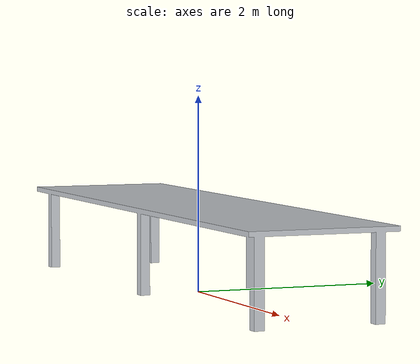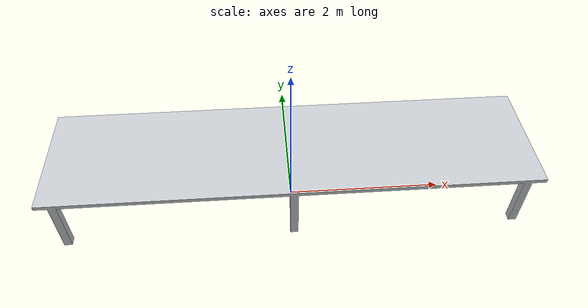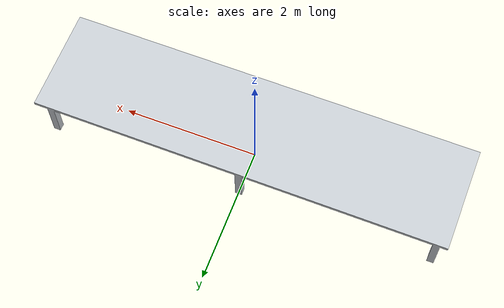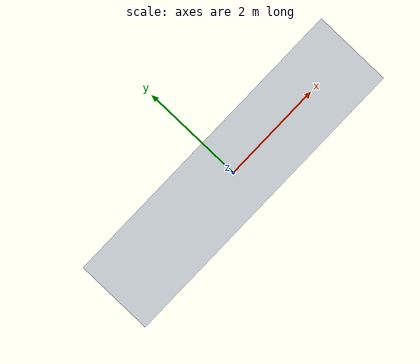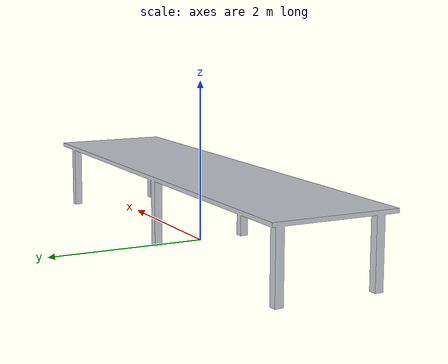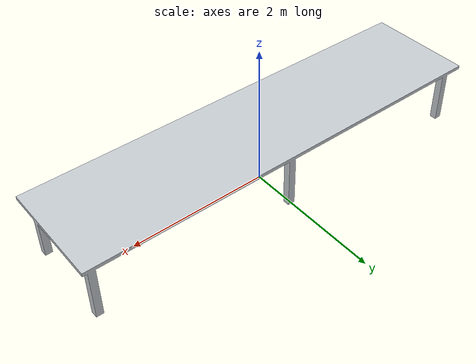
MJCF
<?xml version="1.0" encoding="utf-8"?>
<!-- Generated by scripts/generate_minihannover.py - do not edit by hand. -->
<mujoco model="minihannover_mesh">
  <compiler angle="radian" autolimits="true" meshdir="."/>

  <asset>
    <mesh name="minihannover_mesh" file="minihannover.obj"/>
    <material name="minihannover_top" rgba="0.78 0.8 0.82 1" specular="0.2" shininess="0.3"/>
  </asset>

  <default>
    <default class="minihannover_collision">
      <geom type="box" group="3" contype="1" conaffinity="1"/>
    </default>
  </default>

  <worldbody>
    <body name="minihannover" pos="0 0 0">
      <geom name="minihannover_visual" type="mesh" mesh="minihannover_mesh" material="minihannover_top" contype="0" conaffinity="0" group="0" density="0"/>
      <geom name="minihannover_worktop" class="minihannover_collision" pos="0 0 0.875" size="3 0.75 0.025" density="700"/>
      <geom name="minihannover_leg_x0_y0" class="minihannover_collision" pos="-2.85 -0.6 0.425" size="0.05 0.05 0.425" density="800"/>
      <geom name="minihannover_leg_x0_y1" class="minihannover_collision" pos="-2.85 0.6 0.425" size="0.05 0.05 0.425" density="800"/>
      <geom name="minihannover_leg_x1_y0" class="minihannover_collision" pos="0 -0.6 0.425" size="0.05 0.05 0.425" density="800"/>
      <geom name="minihannover_leg_x1_y1" class="minihannover_collision" pos="0 0.6 0.425" size="0.05 0.05 0.425" density="800"/>
      <geom name="minihannover_leg_x2_y0" class="minihannover_collision" pos="2.85 -0.6 0.425" size="0.05 0.05 0.425" density="800"/>
      <geom name="minihannover_leg_x2_y1" class="minihannover_collision" pos="2.85 0.6 0.425" size="0.05 0.05 0.425" density="800"/>
    </body>
  </worldbody>
</mujoco>
